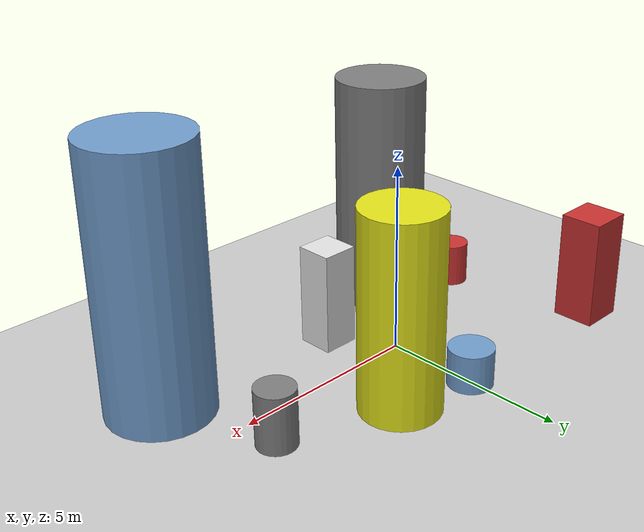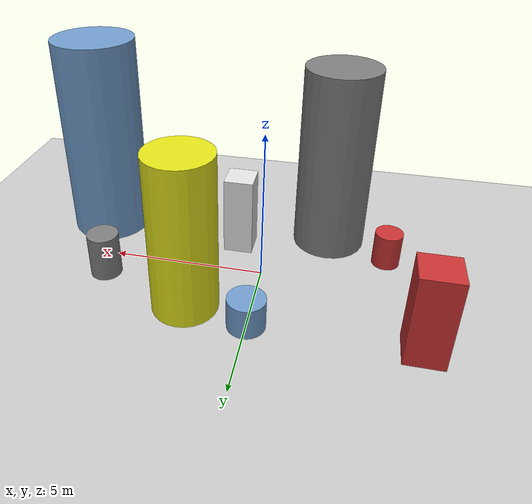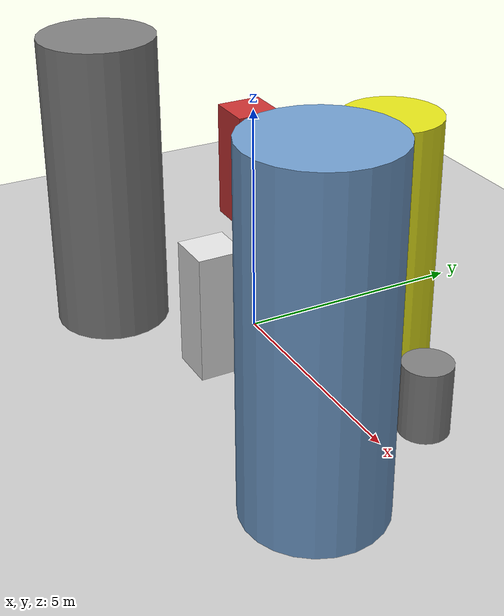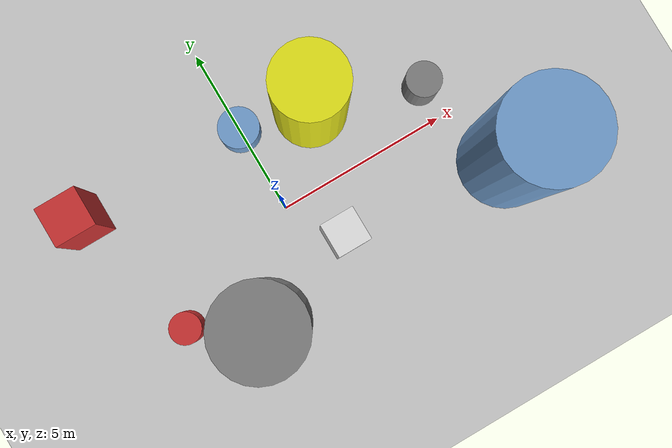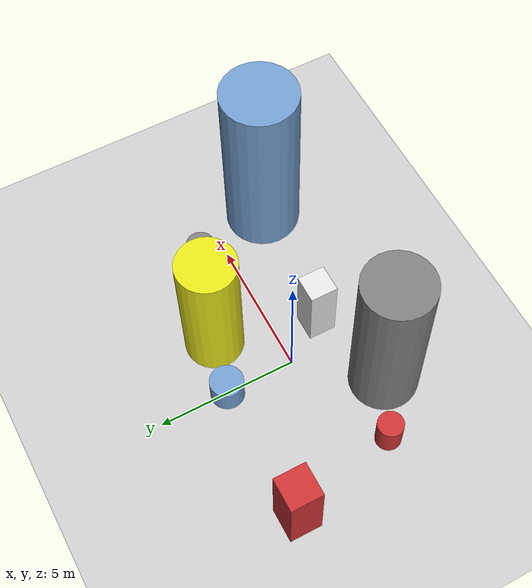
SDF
<?xml version='1.0'?>
<sdf version='1.6'>
  <world name='routeA_rl_v1__support_expansion__rl_val__mixed_3d_low_density_route__000010'>
    <!-- Sun light -->
    <light name='sun' type='directional'>
      <cast_shadows>1</cast_shadows>
      <pose>0 0 10 0 0 0</pose>
      <diffuse>0.8 0.8 0.8 1</diffuse>
      <specular>0.2 0.2 0.2 1</specular>
      <attenuation>
        <range>1000</range>
        <constant>0.9</constant>
        <linear>0.01</linear>
        <quadratic>0.001</quadratic>
      </attenuation>
      <direction>-0.5 0.1 -0.9</direction>
    </light>

    <!-- Ground plane -->
    <model name='ground_plane'>
      <static>1</static>
      <link name='link'>
        <collision name='collision'>
          <geometry>
            <plane>
              <normal>0 0 1</normal>
              <size>100 100</size>
            </plane>
          </geometry>
          <surface>
            <contact>
              <collide_bitmask>65535</collide_bitmask>
              <ode/>
            </contact>
            <friction>
              <ode>
                <mu>100</mu>
                <mu2>50</mu2>
              </ode>
              <torsional><ode/></torsional>
            </friction>
            <bounce/>
          </surface>
          <max_contacts>10</max_contacts>
        </collision>
        <visual name='visual'>
          <cast_shadows>0</cast_shadows>
          <geometry>
            <plane>
              <normal>0 0 1</normal>
              <size>100 100</size>
            </plane>
          </geometry>
          <material>
            <script>
              <uri>file://media/materials/scripts/gazebo.material</uri>
              <n>Gazebo/Grey</n>
            </script>
          </material>
        </visual>
      </link>
    </model>

    <!-- Environment -->
    <magnetic_field>6e-06 2.3e-05 -4.2e-05</magnetic_field>
    <atmosphere type='adiabatic'/>
    <physics name='default_physics' default='0' type='ode'>
      <gravity>0 0 -9.8</gravity>
      <max_step_size>0.004</max_step_size>
      <real_time_factor>1</real_time_factor>
      <real_time_update_rate>250</real_time_update_rate>
    </physics>
    <scene>
      <ambient>0.4 0.4 0.4 1</ambient>
      <background>0.7 0.7 0.7 1</background>
      <shadows>1</shadows>
    </scene>
    <wind/>
    <spherical_coordinates>
      <surface_model>EARTH_WGS84</surface_model>
      <latitude_deg>0</latitude_deg>
      <longitude_deg>0</longitude_deg>
      <elevation>0</elevation>
      <heading_deg>0</heading_deg>
    </spherical_coordinates>

    <!-- ============ OBSTACLES (8) ============ -->
    <model name='low_obs_0'>
      <static>1</static>
      <link name='link'>
        <visual name='visual'>
          <geometry>
            <cylinder>
              <radius>0.4565</radius>
              <length>1.1967</length>
            </cylinder>
          </geometry>
          <material>
            <script>
              <n>Gazebo/Red</n>
              <uri>file://media/materials/scripts/gazebo.material</uri>
            </script>
            <ambient>0.8 0.2 0.2 1</ambient>
          </material>
        </visual>
        <collision name='collision'>
          <geometry>
            <cylinder>
              <radius>0.4565</radius>
              <length>1.1967</length>
            </cylinder>
          </geometry>
          <max_contacts>10</max_contacts>
          <surface>
            <contact><ode/></contact>
            <bounce/>
            <friction>
              <ode><mu>1</mu><mu2>1</mu2></ode>
              <torsional><ode/></torsional>
            </friction>
          </surface>
        </collision>
      </link>
      <pose>-4.0000 -1.5000 0.5984 0 0 0.0000</pose>
    </model>

    <model name='low_obs_1'>
      <static>1</static>
      <link name='link'>
        <visual name='visual'>
          <geometry>
            <cylinder>
              <radius>0.5892</radius>
              <length>1.0170</length>
            </cylinder>
          </geometry>
          <material>
            <script>
              <n>Gazebo/Blue</n>
              <uri>file://media/materials/scripts/gazebo.material</uri>
            </script>
            <ambient>0.447 0.624 0.812 1</ambient>
          </material>
        </visual>
        <collision name='collision'>
          <geometry>
            <cylinder>
              <radius>0.5892</radius>
              <length>1.0170</length>
            </cylinder>
          </geometry>
          <max_contacts>10</max_contacts>
          <surface>
            <contact><ode/></contact>
            <bounce/>
            <friction>
              <ode><mu>1</mu><mu2>1</mu2></ode>
              <torsional><ode/></torsional>
            </friction>
          </surface>
        </collision>
      </link>
      <pose>0.0000 2.5000 0.5085 0 0 0.0000</pose>
    </model>

    <model name='low_obs_2'>
      <static>1</static>
      <link name='link'>
        <visual name='visual'>
          <geometry>
            <cylinder>
              <radius>0.5064</radius>
              <length>1.4938</length>
            </cylinder>
          </geometry>
          <material>
            <script>
              <n>Gazebo/Grey</n>
              <uri>file://media/materials/scripts/gazebo.material</uri>
            </script>
            <ambient>0.5 0.5 0.5 1</ambient>
          </material>
        </visual>
        <collision name='collision'>
          <geometry>
            <cylinder>
              <radius>0.5064</radius>
              <length>1.4938</length>
            </cylinder>
          </geometry>
          <max_contacts>10</max_contacts>
          <surface>
            <contact><ode/></contact>
            <bounce/>
            <friction>
              <ode><mu>1</mu><mu2>1</mu2></ode>
              <torsional><ode/></torsional>
            </friction>
          </surface>
        </collision>
      </link>
      <pose>5.0000 1.0000 0.7469 0 0 0.0000</pose>
    </model>

    <model name='tall_obs_0'>
      <static>1</static>
      <link name='link'>
        <visual name='visual'>
          <geometry>
            <cylinder>
              <radius>1.2209</radius>
              <length>6.3587</length>
            </cylinder>
          </geometry>
          <material>
            <script>
              <n>Gazebo/Grey</n>
              <uri>file://media/materials/scripts/gazebo.material</uri>
            </script>
            <ambient>0.5 0.5 0.5 1</ambient>
          </material>
        </visual>
        <collision name='collision'>
          <geometry>
            <cylinder>
              <radius>1.2209</radius>
              <length>6.3587</length>
            </cylinder>
          </geometry>
          <max_contacts>10</max_contacts>
          <surface>
            <contact><ode/></contact>
            <bounce/>
            <friction>
              <ode><mu>1</mu><mu2>1</mu2></ode>
              <torsional><ode/></torsional>
            </friction>
          </surface>
        </collision>
      </link>
      <pose>-2.0000 -2.5000 3.1794 0 0 0.0000</pose>
    </model>

    <model name='tall_obs_1'>
      <static>1</static>
      <link name='link'>
        <visual name='visual'>
          <geometry>
            <cylinder>
              <radius>1.0391</radius>
              <length>5.1993</length>
            </cylinder>
          </geometry>
          <material>
            <script>
              <n>Gazebo/Yellow</n>
              <uri>file://media/materials/scripts/gazebo.material</uri>
            </script>
            <ambient>0.9 0.9 0.1 1</ambient>
          </material>
        </visual>
        <collision name='collision'>
          <geometry>
            <cylinder>
              <radius>1.0391</radius>
              <length>5.1993</length>
            </cylinder>
          </geometry>
          <max_contacts>10</max_contacts>
          <surface>
            <contact><ode/></contact>
            <bounce/>
            <friction>
              <ode><mu>1</mu><mu2>1</mu2></ode>
              <torsional><ode/></torsional>
            </friction>
          </surface>
        </collision>
      </link>
      <pose>2.0000 2.0000 2.5997 0 0 0.0000</pose>
    </model>

    <model name='tall_obs_2'>
      <static>1</static>
      <link name='link'>
        <visual name='visual'>
          <geometry>
            <cylinder>
              <radius>1.3594</radius>
              <length>6.9036</length>
            </cylinder>
          </geometry>
          <material>
            <script>
              <n>Gazebo/Blue</n>
              <uri>file://media/materials/scripts/gazebo.material</uri>
            </script>
            <ambient>0.447 0.624 0.812 1</ambient>
          </material>
        </visual>
        <collision name='collision'>
          <geometry>
            <cylinder>
              <radius>1.3594</radius>
              <length>6.9036</length>
            </cylinder>
          </geometry>
          <max_contacts>10</max_contacts>
          <surface>
            <contact><ode/></contact>
            <bounce/>
            <friction>
              <ode><mu>1</mu><mu2>1</mu2></ode>
              <torsional><ode/></torsional>
            </friction>
          </surface>
        </collision>
      </link>
      <pose>6.0000 -2.0000 3.4518 0 0 0.0000</pose>
    </model>

    <model name='med_obs_0'>
      <static>1</static>
      <link name='link'>
        <visual name='visual'>
          <geometry>
            <box>
              <size>1.1804 1.1433 2.9567</size>
            </box>
          </geometry>
          <material>
            <script>
              <n>Gazebo/Red</n>
              <uri>file://media/materials/scripts/gazebo.material</uri>
            </script>
            <ambient>0.8 0.2 0.2 1</ambient>
          </material>
        </visual>
        <collision name='collision'>
          <geometry>
            <box>
              <size>1.1804 1.1433 2.9567</size>
            </box>
          </geometry>
          <max_contacts>10</max_contacts>
          <surface>
            <contact><ode/></contact>
            <bounce/>
            <friction>
              <ode><mu>1</mu><mu2>1</mu2></ode>
              <torsional><ode/></torsional>
            </friction>
          </surface>
        </collision>
      </link>
      <pose>-5.0000 2.5000 1.4784 0 0 0.0000</pose>
    </model>

    <model name='med_obs_1'>
      <static>1</static>
      <link name='link'>
        <visual name='visual'>
          <geometry>
            <box>
              <size>0.9758 0.9782 2.7174</size>
            </box>
          </geometry>
          <material>
            <script>
              <n>Gazebo/White</n>
              <uri>file://media/materials/scripts/gazebo.material</uri>
            </script>
            <ambient>0.9 0.9 0.9 1</ambient>
          </material>
        </visual>
        <collision name='collision'>
          <geometry>
            <box>
              <size>0.9758 0.9782 2.7174</size>
            </box>
          </geometry>
          <max_contacts>10</max_contacts>
          <surface>
            <contact><ode/></contact>
            <bounce/>
            <friction>
              <ode><mu>1</mu><mu2>1</mu2></ode>
              <torsional><ode/></torsional>
            </friction>
          </surface>
        </collision>
      </link>
      <pose>1.0000 -1.5000 1.3587 0 0 0.0000</pose>
    </model>

    <!-- GUI camera -->
    <gui fullscreen='0'>
      <camera name='user_camera'>
        <pose>-15 0 18 0 0.85 0.15</pose>
        <view_controller>orbit</view_controller>
        <projection_type>perspective</projection_type>
      </camera>
    </gui>
  </world>
</sdf>
